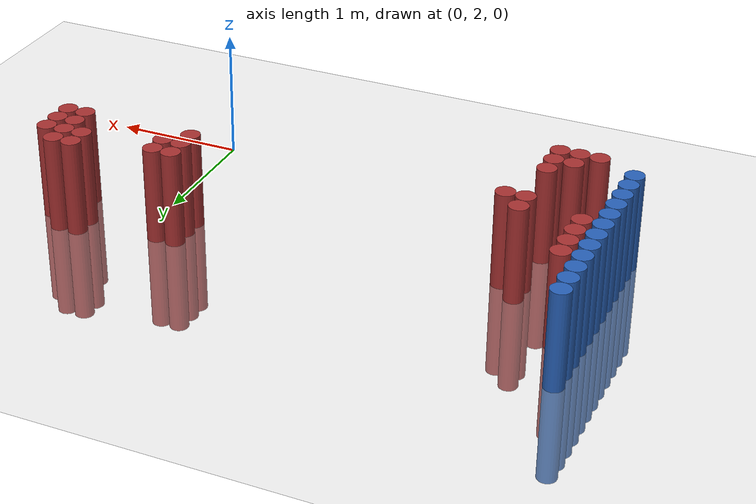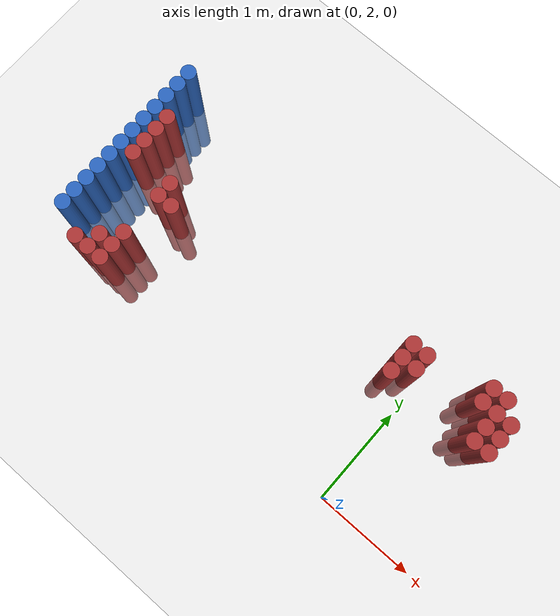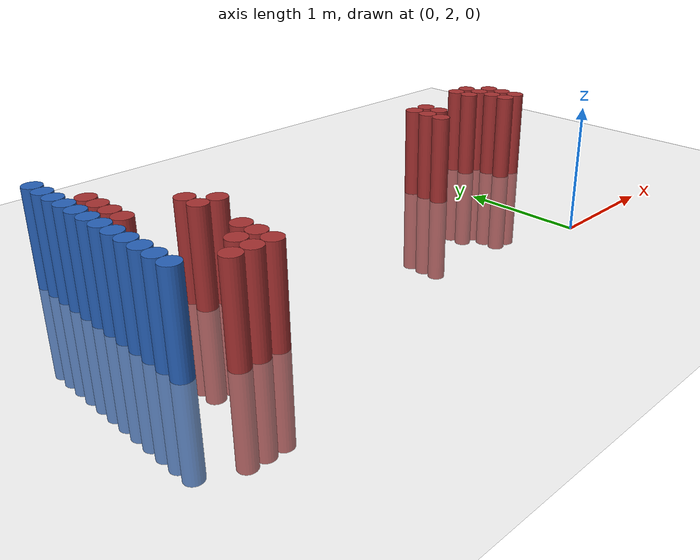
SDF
<sdf version="1.6">
 <world name="default">
  <model name="ground_plane">
   <static>1</static>
   <link name="link">
    <collision name="collision">
     <geometry><plane><normal>0 0 1</normal><size>100 100</size></plane></geometry>
     <surface><friction><ode><mu>100</mu><mu2>50</mu2></ode></friction></surface>
    </collision>
    <visual name="visual">
     <cast_shadows>0</cast_shadows>
     <geometry><plane><normal>0 0 1</normal><size>100 100</size></plane></geometry>
     <material>
      <script><uri>file://media/materials/scripts/gazebo.material</uri><name>Gazebo/Grey</name></script>
     </material>
    </visual>
   </link>
  </model>
  <model name="unit_cylinder_147">
   <static>1</static>
   <pose>-3.425000 2.425000 0.000000 0.000000 0.000000 0.000000</pose>
   <link name="link">
    <inertial>
     <mass>1</mass>
     <inertia><ixx>0.145833</ixx><ixy>0</ixy><ixz>0</ixz><iyy>0.145833</iyy><iyz>0</iyz><izz>0.125</izz></inertia>
    </inertial>
    <collision name="collision">
     <geometry><cylinder><radius>0.075000</radius><length>1.5</length></cylinder></geometry>
    </collision>
    <visual name="visual">
     <geometry><cylinder><radius>0.075000</radius><length>1.5</length></cylinder></geometry>
     <material>
      <ambient>0.152000 0.379000 0.720000 1</ambient>
      <diffuse>0.152000 0.379000 0.720000 1</diffuse>
     </material>
     <material>
      <script><name>Gazebo/Grey</name><uri>file://media/materials/scripts/gazebo.material</uri></script>
     </material>
    </visual>
   </link>
  </model>
  <model name="unit_cylinder_149">
   <static>1</static>
   <pose>-3.425000 2.575000 0.000000 0.000000 0.000000 0.000000</pose>
   <link name="link">
    <inertial>
     <mass>1</mass>
     <inertia><ixx>0.145833</ixx><ixy>0</ixy><ixz>0</ixz><iyy>0.145833</iyy><iyz>0</iyz><izz>0.125</izz></inertia>
    </inertial>
    <collision name="collision">
     <geometry><cylinder><radius>0.075000</radius><length>1.5</length></cylinder></geometry>
    </collision>
    <visual name="visual">
     <geometry><cylinder><radius>0.075000</radius><length>1.5</length></cylinder></geometry>
     <material>
      <ambient>0.152000 0.379000 0.720000 1</ambient>
      <diffuse>0.152000 0.379000 0.720000 1</diffuse>
     </material>
     <material>
      <script><name>Gazebo/Grey</name><uri>file://media/materials/scripts/gazebo.material</uri></script>
     </material>
    </visual>
   </link>
  </model>
  <model name="unit_cylinder_151">
   <static>1</static>
   <pose>-3.425000 2.725000 0.000000 0.000000 0.000000 0.000000</pose>
   <link name="link">
    <inertial>
     <mass>1</mass>
     <inertia><ixx>0.145833</ixx><ixy>0</ixy><ixz>0</ixz><iyy>0.145833</iyy><iyz>0</iyz><izz>0.125</izz></inertia>
    </inertial>
    <collision name="collision">
     <geometry><cylinder><radius>0.075000</radius><length>1.5</length></cylinder></geometry>
    </collision>
    <visual name="visual">
     <geometry><cylinder><radius>0.075000</radius><length>1.5</length></cylinder></geometry>
     <material>
      <ambient>0.152000 0.379000 0.720000 1</ambient>
      <diffuse>0.152000 0.379000 0.720000 1</diffuse>
     </material>
     <material>
      <script><name>Gazebo/Grey</name><uri>file://media/materials/scripts/gazebo.material</uri></script>
     </material>
    </visual>
   </link>
  </model>
  <model name="unit_cylinder_153">
   <static>1</static>
   <pose>-3.425000 2.875000 0.000000 0.000000 0.000000 0.000000</pose>
   <link name="link">
    <inertial>
     <mass>1</mass>
     <inertia><ixx>0.145833</ixx><ixy>0</ixy><ixz>0</ixz><iyy>0.145833</iyy><iyz>0</iyz><izz>0.125</izz></inertia>
    </inertial>
    <collision name="collision">
     <geometry><cylinder><radius>0.075000</radius><length>1.5</length></cylinder></geometry>
    </collision>
    <visual name="visual">
     <geometry><cylinder><radius>0.075000</radius><length>1.5</length></cylinder></geometry>
     <material>
      <ambient>0.152000 0.379000 0.720000 1</ambient>
      <diffuse>0.152000 0.379000 0.720000 1</diffuse>
     </material>
     <material>
      <script><name>Gazebo/Grey</name><uri>file://media/materials/scripts/gazebo.material</uri></script>
     </material>
    </visual>
   </link>
  </model>
  <model name="unit_cylinder_155">
   <static>1</static>
   <pose>-3.425000 3.025000 0.000000 0.000000 0.000000 0.000000</pose>
   <link name="link">
    <inertial>
     <mass>1</mass>
     <inertia><ixx>0.145833</ixx><ixy>0</ixy><ixz>0</ixz><iyy>0.145833</iyy><iyz>0</iyz><izz>0.125</izz></inertia>
    </inertial>
    <collision name="collision">
     <geometry><cylinder><radius>0.075000</radius><length>1.5</length></cylinder></geometry>
    </collision>
    <visual name="visual">
     <geometry><cylinder><radius>0.075000</radius><length>1.5</length></cylinder></geometry>
     <material>
      <ambient>0.152000 0.379000 0.720000 1</ambient>
      <diffuse>0.152000 0.379000 0.720000 1</diffuse>
     </material>
     <material>
      <script><name>Gazebo/Grey</name><uri>file://media/materials/scripts/gazebo.material</uri></script>
     </material>
    </visual>
   </link>
  </model>
  <model name="unit_cylinder_157">
   <static>1</static>
   <pose>-3.425000 3.175000 0.000000 0.000000 0.000000 0.000000</pose>
   <link name="link">
    <inertial>
     <mass>1</mass>
     <inertia><ixx>0.145833</ixx><ixy>0</ixy><ixz>0</ixz><iyy>0.145833</iyy><iyz>0</iyz><izz>0.125</izz></inertia>
    </inertial>
    <collision name="collision">
     <geometry><cylinder><radius>0.075000</radius><length>1.5</length></cylinder></geometry>
    </collision>
    <visual name="visual">
     <geometry><cylinder><radius>0.075000</radius><length>1.5</length></cylinder></geometry>
     <material>
      <ambient>0.152000 0.379000 0.720000 1</ambient>
      <diffuse>0.152000 0.379000 0.720000 1</diffuse>
     </material>
     <material>
      <script><name>Gazebo/Grey</name><uri>file://media/materials/scripts/gazebo.material</uri></script>
     </material>
    </visual>
   </link>
  </model>
  <model name="unit_cylinder_159">
   <static>1</static>
   <pose>-3.425000 3.325000 0.000000 0.000000 0.000000 0.000000</pose>
   <link name="link">
    <inertial>
     <mass>1</mass>
     <inertia><ixx>0.145833</ixx><ixy>0</ixy><ixz>0</ixz><iyy>0.145833</iyy><iyz>0</iyz><izz>0.125</izz></inertia>
    </inertial>
    <collision name="collision">
     <geometry><cylinder><radius>0.075000</radius><length>1.5</length></cylinder></geometry>
    </collision>
    <visual name="visual">
     <geometry><cylinder><radius>0.075000</radius><length>1.5</length></cylinder></geometry>
     <material>
      <ambient>0.152000 0.379000 0.720000 1</ambient>
      <diffuse>0.152000 0.379000 0.720000 1</diffuse>
     </material>
     <material>
      <script><name>Gazebo/Grey</name><uri>file://media/materials/scripts/gazebo.material</uri></script>
     </material>
    </visual>
   </link>
  </model>
  <model name="unit_cylinder_161">
   <static>1</static>
   <pose>-3.425000 3.475000 0.000000 0.000000 0.000000 0.000000</pose>
   <link name="link">
    <inertial>
     <mass>1</mass>
     <inertia><ixx>0.145833</ixx><ixy>0</ixy><ixz>0</ixz><iyy>0.145833</iyy><iyz>0</iyz><izz>0.125</izz></inertia>
    </inertial>
    <collision name="collision">
     <geometry><cylinder><radius>0.075000</radius><length>1.5</length></cylinder></geometry>
    </collision>
    <visual name="visual">
     <geometry><cylinder><radius>0.075000</radius><length>1.5</length></cylinder></geometry>
     <material>
      <ambient>0.152000 0.379000 0.720000 1</ambient>
      <diffuse>0.152000 0.379000 0.720000 1</diffuse>
     </material>
     <material>
      <script><name>Gazebo/Grey</name><uri>file://media/materials/scripts/gazebo.material</uri></script>
     </material>
    </visual>
   </link>
  </model>
  <model name="unit_cylinder_163">
   <static>1</static>
   <pose>-3.425000 3.625000 0.000000 0.000000 0.000000 0.000000</pose>
   <link name="link">
    <inertial>
     <mass>1</mass>
     <inertia><ixx>0.145833</ixx><ixy>0</ixy><ixz>0</ixz><iyy>0.145833</iyy><iyz>0</iyz><izz>0.125</izz></inertia>
    </inertial>
    <collision name="collision">
     <geometry><cylinder><radius>0.075000</radius><length>1.5</length></cylinder></geometry>
    </collision>
    <visual name="visual">
     <geometry><cylinder><radius>0.075000</radius><length>1.5</length></cylinder></geometry>
     <material>
      <ambient>0.152000 0.379000 0.720000 1</ambient>
      <diffuse>0.152000 0.379000 0.720000 1</diffuse>
     </material>
     <material>
      <script><name>Gazebo/Grey</name><uri>file://media/materials/scripts/gazebo.material</uri></script>
     </material>
    </visual>
   </link>
  </model>
  <model name="unit_cylinder_165">
   <static>1</static>
   <pose>-3.425000 3.775000 0.000000 0.000000 0.000000 0.000000</pose>
   <link name="link">
    <inertial>
     <mass>1</mass>
     <inertia><ixx>0.145833</ixx><ixy>0</ixy><ixz>0</ixz><iyy>0.145833</iyy><iyz>0</iyz><izz>0.125</izz></inertia>
    </inertial>
    <collision name="collision">
     <geometry><cylinder><radius>0.075000</radius><length>1.5</length></cylinder></geometry>
    </collision>
    <visual name="visual">
     <geometry><cylinder><radius>0.075000</radius><length>1.5</length></cylinder></geometry>
     <material>
      <ambient>0.152000 0.379000 0.720000 1</ambient>
      <diffuse>0.152000 0.379000 0.720000 1</diffuse>
     </material>
     <material>
      <script><name>Gazebo/Grey</name><uri>file://media/materials/scripts/gazebo.material</uri></script>
     </material>
    </visual>
   </link>
  </model>
  <model name="unit_cylinder_167">
   <static>1</static>
   <pose>-3.425000 3.925000 0.000000 0.000000 0.000000 0.000000</pose>
   <link name="link">
    <inertial>
     <mass>1</mass>
     <inertia><ixx>0.145833</ixx><ixy>0</ixy><ixz>0</ixz><iyy>0.145833</iyy><iyz>0</iyz><izz>0.125</izz></inertia>
    </inertial>
    <collision name="collision">
     <geometry><cylinder><radius>0.075000</radius><length>1.5</length></cylinder></geometry>
    </collision>
    <visual name="visual">
     <geometry><cylinder><radius>0.075000</radius><length>1.5</length></cylinder></geometry>
     <material>
      <ambient>0.152000 0.379000 0.720000 1</ambient>
      <diffuse>0.152000 0.379000 0.720000 1</diffuse>
     </material>
     <material>
      <script><name>Gazebo/Grey</name><uri>file://media/materials/scripts/gazebo.material</uri></script>
     </material>
    </visual>
   </link>
  </model>
  <model name="unit_cylinder_169">
   <static>1</static>
   <pose>-3.425000 4.075000 0.000000 0.000000 0.000000 0.000000</pose>
   <link name="link">
    <inertial>
     <mass>1</mass>
     <inertia><ixx>0.145833</ixx><ixy>0</ixy><ixz>0</ixz><iyy>0.145833</iyy><iyz>0</iyz><izz>0.125</izz></inertia>
    </inertial>
    <collision name="collision">
     <geometry><cylinder><radius>0.075000</radius><length>1.5</length></cylinder></geometry>
    </collision>
    <visual name="visual">
     <geometry><cylinder><radius>0.075000</radius><length>1.5</length></cylinder></geometry>
     <material>
      <ambient>0.152000 0.379000 0.720000 1</ambient>
      <diffuse>0.152000 0.379000 0.720000 1</diffuse>
     </material>
     <material>
      <script><name>Gazebo/Grey</name><uri>file://media/materials/scripts/gazebo.material</uri></script>
     </material>
    </visual>
   </link>
  </model>
  <model name="unit_cylinder_237">
   <static>1</static>
   <pose>-3.425000 2.425000 0.000000 0.000000 0.000000 0.000000</pose>
   <link name="link">
    <inertial>
     <mass>1</mass>
     <inertia><ixx>0.145833</ixx><ixy>0</ixy><ixz>0</ixz><iyy>0.145833</iyy><iyz>0</iyz><izz>0.125</izz></inertia>
    </inertial>
    <collision name="collision">
     <geometry><cylinder><radius>0.075000</radius><length>1.5</length></cylinder></geometry>
    </collision>
    <visual name="visual">
     <geometry><cylinder><radius>0.075000</radius><length>1.5</length></cylinder></geometry>
     <material>
      <ambient>0.152000 0.379000 0.720000 1</ambient>
      <diffuse>0.152000 0.379000 0.720000 1</diffuse>
     </material>
     <material>
      <script><name>Gazebo/Grey</name><uri>file://media/materials/scripts/gazebo.material</uri></script>
     </material>
    </visual>
   </link>
  </model>
  <model name="unit_cylinder_238">
   <static>1</static>
   <pose>-3.425000 2.575000 0.000000 0.000000 0.000000 0.000000</pose>
   <link name="link">
    <inertial>
     <mass>1</mass>
     <inertia><ixx>0.145833</ixx><ixy>0</ixy><ixz>0</ixz><iyy>0.145833</iyy><iyz>0</iyz><izz>0.125</izz></inertia>
    </inertial>
    <collision name="collision">
     <geometry><cylinder><radius>0.075000</radius><length>1.5</length></cylinder></geometry>
    </collision>
    <visual name="visual">
     <geometry><cylinder><radius>0.075000</radius><length>1.5</length></cylinder></geometry>
     <material>
      <ambient>0.152000 0.379000 0.720000 1</ambient>
      <diffuse>0.152000 0.379000 0.720000 1</diffuse>
     </material>
     <material>
      <script><name>Gazebo/Grey</name><uri>file://media/materials/scripts/gazebo.material</uri></script>
     </material>
    </visual>
   </link>
  </model>
  <model name="unit_cylinder_239">
   <static>1</static>
   <pose>-3.425000 2.725000 0.000000 0.000000 0.000000 0.000000</pose>
   <link name="link">
    <inertial>
     <mass>1</mass>
     <inertia><ixx>0.145833</ixx><ixy>0</ixy><ixz>0</ixz><iyy>0.145833</iyy><iyz>0</iyz><izz>0.125</izz></inertia>
    </inertial>
    <collision name="collision">
     <geometry><cylinder><radius>0.075000</radius><length>1.5</length></cylinder></geometry>
    </collision>
    <visual name="visual">
     <geometry><cylinder><radius>0.075000</radius><length>1.5</length></cylinder></geometry>
     <material>
      <ambient>0.152000 0.379000 0.720000 1</ambient>
      <diffuse>0.152000 0.379000 0.720000 1</diffuse>
     </material>
     <material>
      <script><name>Gazebo/Grey</name><uri>file://media/materials/scripts/gazebo.material</uri></script>
     </material>
    </visual>
   </link>
  </model>
  <model name="unit_cylinder_240">
   <static>1</static>
   <pose>-3.425000 2.875000 0.000000 0.000000 0.000000 0.000000</pose>
   <link name="link">
    <inertial>
     <mass>1</mass>
     <inertia><ixx>0.145833</ixx><ixy>0</ixy><ixz>0</ixz><iyy>0.145833</iyy><iyz>0</iyz><izz>0.125</izz></inertia>
    </inertial>
    <collision name="collision">
     <geometry><cylinder><radius>0.075000</radius><length>1.5</length></cylinder></geometry>
    </collision>
    <visual name="visual">
     <geometry><cylinder><radius>0.075000</radius><length>1.5</length></cylinder></geometry>
     <material>
      <ambient>0.152000 0.379000 0.720000 1</ambient>
      <diffuse>0.152000 0.379000 0.720000 1</diffuse>
     </material>
     <material>
      <script><name>Gazebo/Grey</name><uri>file://media/materials/scripts/gazebo.material</uri></script>
     </material>
    </visual>
   </link>
  </model>
  <model name="unit_cylinder_241">
   <static>1</static>
   <pose>-3.425000 3.025000 0.000000 0.000000 0.000000 0.000000</pose>
   <link name="link">
    <inertial>
     <mass>1</mass>
     <inertia><ixx>0.145833</ixx><ixy>0</ixy><ixz>0</ixz><iyy>0.145833</iyy><iyz>0</iyz><izz>0.125</izz></inertia>
    </inertial>
    <collision name="collision">
     <geometry><cylinder><radius>0.075000</radius><length>1.5</length></cylinder></geometry>
    </collision>
    <visual name="visual">
     <geometry><cylinder><radius>0.075000</radius><length>1.5</length></cylinder></geometry>
     <material>
      <ambient>0.152000 0.379000 0.720000 1</ambient>
      <diffuse>0.152000 0.379000 0.720000 1</diffuse>
     </material>
     <material>
      <script><name>Gazebo/Grey</name><uri>file://media/materials/scripts/gazebo.material</uri></script>
     </material>
    </visual>
   </link>
  </model>
  <model name="unit_cylinder_242">
   <static>1</static>
   <pose>-3.425000 3.175000 0.000000 0.000000 0.000000 0.000000</pose>
   <link name="link">
    <inertial>
     <mass>1</mass>
     <inertia><ixx>0.145833</ixx><ixy>0</ixy><ixz>0</ixz><iyy>0.145833</iyy><iyz>0</iyz><izz>0.125</izz></inertia>
    </inertial>
    <collision name="collision">
     <geometry><cylinder><radius>0.075000</radius><length>1.5</length></cylinder></geometry>
    </collision>
    <visual name="visual">
     <geometry><cylinder><radius>0.075000</radius><length>1.5</length></cylinder></geometry>
     <material>
      <ambient>0.152000 0.379000 0.720000 1</ambient>
      <diffuse>0.152000 0.379000 0.720000 1</diffuse>
     </material>
     <material>
      <script><name>Gazebo/Grey</name><uri>file://media/materials/scripts/gazebo.material</uri></script>
     </material>
    </visual>
   </link>
  </model>
  <model name="unit_cylinder_243">
   <static>1</static>
   <pose>-3.425000 3.325000 0.000000 0.000000 0.000000 0.000000</pose>
   <link name="link">
    <inertial>
     <mass>1</mass>
     <inertia><ixx>0.145833</ixx><ixy>0</ixy><ixz>0</ixz><iyy>0.145833</iyy><iyz>0</iyz><izz>0.125</izz></inertia>
    </inertial>
    <collision name="collision">
     <geometry><cylinder><radius>0.075000</radius><length>1.5</length></cylinder></geometry>
    </collision>
    <visual name="visual">
     <geometry><cylinder><radius>0.075000</radius><length>1.5</length></cylinder></geometry>
     <material>
      <ambient>0.152000 0.379000 0.720000 1</ambient>
      <diffuse>0.152000 0.379000 0.720000 1</diffuse>
     </material>
     <material>
      <script><name>Gazebo/Grey</name><uri>file://media/materials/scripts/gazebo.material</uri></script>
     </material>
    </visual>
   </link>
  </model>
  <model name="unit_cylinder_244">
   <static>1</static>
   <pose>-3.425000 3.475000 0.000000 0.000000 0.000000 0.000000</pose>
   <link name="link">
    <inertial>
     <mass>1</mass>
     <inertia><ixx>0.145833</ixx><ixy>0</ixy><ixz>0</ixz><iyy>0.145833</iyy><iyz>0</iyz><izz>0.125</izz></inertia>
    </inertial>
    <collision name="collision">
     <geometry><cylinder><radius>0.075000</radius><length>1.5</length></cylinder></geometry>
    </collision>
    <visual name="visual">
     <geometry><cylinder><radius>0.075000</radius><length>1.5</length></cylinder></geometry>
     <material>
      <ambient>0.152000 0.379000 0.720000 1</ambient>
      <diffuse>0.152000 0.379000 0.720000 1</diffuse>
     </material>
     <material>
      <script><name>Gazebo/Grey</name><uri>file://media/materials/scripts/gazebo.material</uri></script>
     </material>
    </visual>
   </link>
  </model>
  <model name="unit_cylinder_245">
   <static>1</static>
   <pose>-3.425000 3.625000 0.000000 0.000000 0.000000 0.000000</pose>
   <link name="link">
    <inertial>
     <mass>1</mass>
     <inertia><ixx>0.145833</ixx><ixy>0</ixy><ixz>0</ixz><iyy>0.145833</iyy><iyz>0</iyz><izz>0.125</izz></inertia>
    </inertial>
    <collision name="collision">
     <geometry><cylinder><radius>0.075000</radius><length>1.5</length></cylinder></geometry>
    </collision>
    <visual name="visual">
     <geometry><cylinder><radius>0.075000</radius><length>1.5</length></cylinder></geometry>
     <material>
      <ambient>0.152000 0.379000 0.720000 1</ambient>
      <diffuse>0.152000 0.379000 0.720000 1</diffuse>
     </material>
     <material>
      <script><name>Gazebo/Grey</name><uri>file://media/materials/scripts/gazebo.material</uri></script>
     </material>
    </visual>
   </link>
  </model>
  <model name="unit_cylinder_246">
   <static>1</static>
   <pose>-3.425000 3.775000 0.000000 0.000000 0.000000 0.000000</pose>
   <link name="link">
    <inertial>
     <mass>1</mass>
     <inertia><ixx>0.145833</ixx><ixy>0</ixy><ixz>0</ixz><iyy>0.145833</iyy><iyz>0</iyz><izz>0.125</izz></inertia>
    </inertial>
    <collision name="collision">
     <geometry><cylinder><radius>0.075000</radius><length>1.5</length></cylinder></geometry>
    </collision>
    <visual name="visual">
     <geometry><cylinder><radius>0.075000</radius><length>1.5</length></cylinder></geometry>
     <material>
      <ambient>0.152000 0.379000 0.720000 1</ambient>
      <diffuse>0.152000 0.379000 0.720000 1</diffuse>
     </material>
     <material>
      <script><name>Gazebo/Grey</name><uri>file://media/materials/scripts/gazebo.material</uri></script>
     </material>
    </visual>
   </link>
  </model>
  <model name="unit_cylinder_247">
   <static>1</static>
   <pose>-3.425000 3.925000 0.000000 0.000000 0.000000 0.000000</pose>
   <link name="link">
    <inertial>
     <mass>1</mass>
     <inertia><ixx>0.145833</ixx><ixy>0</ixy><ixz>0</ixz><iyy>0.145833</iyy><iyz>0</iyz><izz>0.125</izz></inertia>
    </inertial>
    <collision name="collision">
     <geometry><cylinder><radius>0.075000</radius><length>1.5</length></cylinder></geometry>
    </collision>
    <visual name="visual">
     <geometry><cylinder><radius>0.075000</radius><length>1.5</length></cylinder></geometry>
     <material>
      <ambient>0.152000 0.379000 0.720000 1</ambient>
      <diffuse>0.152000 0.379000 0.720000 1</diffuse>
     </material>
     <material>
      <script><name>Gazebo/Grey</name><uri>file://media/materials/scripts/gazebo.material</uri></script>
     </material>
    </visual>
   </link>
  </model>
  <model name="unit_cylinder_277">
   <static>1</static>
   <pose>-3.275000 3.175000 0.000000 0.000000 0.000000 0.000000</pose>
   <link name="link">
    <inertial>
     <mass>1</mass>
     <inertia><ixx>0.145833</ixx><ixy>0</ixy><ixz>0</ixz><iyy>0.145833</iyy><iyz>0</iyz><izz>0.125</izz></inertia>
    </inertial>
    <collision name="collision">
     <geometry><cylinder><radius>0.075000</radius><length>1.5</length></cylinder></geometry>
    </collision>
    <visual name="visual">
     <geometry><cylinder><radius>0.075000</radius><length>1.5</length></cylinder></geometry>
     <material>
      <ambient>0.648000 0.192000 0.192000 1</ambient>
      <diffuse>0.648000 0.192000 0.192000 1</diffuse>
     </material>
     <material>
      <script><name>Gazebo/Grey</name><uri>file://media/materials/scripts/gazebo.material</uri></script>
     </material>
    </visual>
   </link>
  </model>
  <model name="unit_cylinder_278">
   <static>1</static>
   <pose>-3.275000 3.325000 0.000000 0.000000 0.000000 0.000000</pose>
   <link name="link">
    <inertial>
     <mass>1</mass>
     <inertia><ixx>0.145833</ixx><ixy>0</ixy><ixz>0</ixz><iyy>0.145833</iyy><iyz>0</iyz><izz>0.125</izz></inertia>
    </inertial>
    <collision name="collision">
     <geometry><cylinder><radius>0.075000</radius><length>1.5</length></cylinder></geometry>
    </collision>
    <visual name="visual">
     <geometry><cylinder><radius>0.075000</radius><length>1.5</length></cylinder></geometry>
     <material>
      <ambient>0.648000 0.192000 0.192000 1</ambient>
      <diffuse>0.648000 0.192000 0.192000 1</diffuse>
     </material>
     <material>
      <script><name>Gazebo/Grey</name><uri>file://media/materials/scripts/gazebo.material</uri></script>
     </material>
    </visual>
   </link>
  </model>
  <model name="unit_cylinder_279">
   <static>1</static>
   <pose>-3.275000 3.475000 0.000000 0.000000 0.000000 0.000000</pose>
   <link name="link">
    <inertial>
     <mass>1</mass>
     <inertia><ixx>0.145833</ixx><ixy>0</ixy><ixz>0</ixz><iyy>0.145833</iyy><iyz>0</iyz><izz>0.125</izz></inertia>
    </inertial>
    <collision name="collision">
     <geometry><cylinder><radius>0.075000</radius><length>1.5</length></cylinder></geometry>
    </collision>
    <visual name="visual">
     <geometry><cylinder><radius>0.075000</radius><length>1.5</length></cylinder></geometry>
     <material>
      <ambient>0.648000 0.192000 0.192000 1</ambient>
      <diffuse>0.648000 0.192000 0.192000 1</diffuse>
     </material>
     <material>
      <script><name>Gazebo/Grey</name><uri>file://media/materials/scripts/gazebo.material</uri></script>
     </material>
    </visual>
   </link>
  </model>
  <model name="unit_cylinder_280">
   <static>1</static>
   <pose>-3.275000 3.625000 0.000000 0.000000 0.000000 0.000000</pose>
   <link name="link">
    <inertial>
     <mass>1</mass>
     <inertia><ixx>0.145833</ixx><ixy>0</ixy><ixz>0</ixz><iyy>0.145833</iyy><iyz>0</iyz><izz>0.125</izz></inertia>
    </inertial>
    <collision name="collision">
     <geometry><cylinder><radius>0.075000</radius><length>1.5</length></cylinder></geometry>
    </collision>
    <visual name="visual">
     <geometry><cylinder><radius>0.075000</radius><length>1.5</length></cylinder></geometry>
     <material>
      <ambient>0.648000 0.192000 0.192000 1</ambient>
      <diffuse>0.648000 0.192000 0.192000 1</diffuse>
     </material>
     <material>
      <script><name>Gazebo/Grey</name><uri>file://media/materials/scripts/gazebo.material</uri></script>
     </material>
    </visual>
   </link>
  </model>
  <model name="unit_cylinder_294">
   <static>1</static>
   <pose>-3.125000 2.275000 0.000000 0.000000 0.000000 0.000000</pose>
   <link name="link">
    <inertial>
     <mass>1</mass>
     <inertia><ixx>0.145833</ixx><ixy>0</ixy><ixz>0</ixz><iyy>0.145833</iyy><iyz>0</iyz><izz>0.125</izz></inertia>
    </inertial>
    <collision name="collision">
     <geometry><cylinder><radius>0.075000</radius><length>1.5</length></cylinder></geometry>
    </collision>
    <visual name="visual">
     <geometry><cylinder><radius>0.075000</radius><length>1.5</length></cylinder></geometry>
     <material>
      <ambient>0.648000 0.192000 0.192000 1</ambient>
      <diffuse>0.648000 0.192000 0.192000 1</diffuse>
     </material>
     <material>
      <script><name>Gazebo/Grey</name><uri>file://media/materials/scripts/gazebo.material</uri></script>
     </material>
    </visual>
   </link>
  </model>
  <model name="unit_cylinder_299">
   <static>1</static>
   <pose>-2.975000 2.275000 0.000000 0.000000 0.000000 0.000000</pose>
   <link name="link">
    <inertial>
     <mass>1</mass>
     <inertia><ixx>0.145833</ixx><ixy>0</ixy><ixz>0</ixz><iyy>0.145833</iyy><iyz>0</iyz><izz>0.125</izz></inertia>
    </inertial>
    <collision name="collision">
     <geometry><cylinder><radius>0.075000</radius><length>1.5</length></cylinder></geometry>
    </collision>
    <visual name="visual">
     <geometry><cylinder><radius>0.075000</radius><length>1.5</length></cylinder></geometry>
     <material>
      <ambient>0.648000 0.192000 0.192000 1</ambient>
      <diffuse>0.648000 0.192000 0.192000 1</diffuse>
     </material>
     <material>
      <script><name>Gazebo/Grey</name><uri>file://media/materials/scripts/gazebo.material</uri></script>
     </material>
    </visual>
   </link>
  </model>
  <model name="unit_cylinder_300">
   <static>1</static>
   <pose>-2.975000 2.425000 0.000000 0.000000 0.000000 0.000000</pose>
   <link name="link">
    <inertial>
     <mass>1</mass>
     <inertia><ixx>0.145833</ixx><ixy>0</ixy><ixz>0</ixz><iyy>0.145833</iyy><iyz>0</iyz><izz>0.125</izz></inertia>
    </inertial>
    <collision name="collision">
     <geometry><cylinder><radius>0.075000</radius><length>1.5</length></cylinder></geometry>
    </collision>
    <visual name="visual">
     <geometry><cylinder><radius>0.075000</radius><length>1.5</length></cylinder></geometry>
     <material>
      <ambient>0.648000 0.192000 0.192000 1</ambient>
      <diffuse>0.648000 0.192000 0.192000 1</diffuse>
     </material>
     <material>
      <script><name>Gazebo/Grey</name><uri>file://media/materials/scripts/gazebo.material</uri></script>
     </material>
    </visual>
   </link>
  </model>
  <model name="unit_cylinder_306">
   <static>1</static>
   <pose>-2.825000 2.275000 0.000000 0.000000 0.000000 0.000000</pose>
   <link name="link">
    <inertial>
     <mass>1</mass>
     <inertia><ixx>0.145833</ixx><ixy>0</ixy><ixz>0</ixz><iyy>0.145833</iyy><iyz>0</iyz><izz>0.125</izz></inertia>
    </inertial>
    <collision name="collision">
     <geometry><cylinder><radius>0.075000</radius><length>1.5</length></cylinder></geometry>
    </collision>
    <visual name="visual">
     <geometry><cylinder><radius>0.075000</radius><length>1.5</length></cylinder></geometry>
     <material>
      <ambient>0.648000 0.192000 0.192000 1</ambient>
      <diffuse>0.648000 0.192000 0.192000 1</diffuse>
     </material>
     <material>
      <script><name>Gazebo/Grey</name><uri>file://media/materials/scripts/gazebo.material</uri></script>
     </material>
    </visual>
   </link>
  </model>
  <model name="unit_cylinder_307">
   <static>1</static>
   <pose>-2.825000 2.425000 0.000000 0.000000 0.000000 0.000000</pose>
   <link name="link">
    <inertial>
     <mass>1</mass>
     <inertia><ixx>0.145833</ixx><ixy>0</ixy><ixz>0</ixz><iyy>0.145833</iyy><iyz>0</iyz><izz>0.125</izz></inertia>
    </inertial>
    <collision name="collision">
     <geometry><cylinder><radius>0.075000</radius><length>1.5</length></cylinder></geometry>
    </collision>
    <visual name="visual">
     <geometry><cylinder><radius>0.075000</radius><length>1.5</length></cylinder></geometry>
     <material>
      <ambient>0.648000 0.192000 0.192000 1</ambient>
      <diffuse>0.648000 0.192000 0.192000 1</diffuse>
     </material>
     <material>
      <script><name>Gazebo/Grey</name><uri>file://media/materials/scripts/gazebo.material</uri></script>
     </material>
    </visual>
   </link>
  </model>
  <model name="unit_cylinder_308">
   <static>1</static>
   <pose>-2.825000 2.575000 0.000000 0.000000 0.000000 0.000000</pose>
   <link name="link">
    <inertial>
     <mass>1</mass>
     <inertia><ixx>0.145833</ixx><ixy>0</ixy><ixz>0</ixz><iyy>0.145833</iyy><iyz>0</iyz><izz>0.125</izz></inertia>
    </inertial>
    <collision name="collision">
     <geometry><cylinder><radius>0.075000</radius><length>1.5</length></cylinder></geometry>
    </collision>
    <visual name="visual">
     <geometry><cylinder><radius>0.075000</radius><length>1.5</length></cylinder></geometry>
     <material>
      <ambient>0.648000 0.192000 0.192000 1</ambient>
      <diffuse>0.648000 0.192000 0.192000 1</diffuse>
     </material>
     <material>
      <script><name>Gazebo/Grey</name><uri>file://media/materials/scripts/gazebo.material</uri></script>
     </material>
    </visual>
   </link>
  </model>
  <model name="unit_cylinder_309">
   <static>1</static>
   <pose>-2.825000 3.025000 0.000000 0.000000 0.000000 0.000000</pose>
   <link name="link">
    <inertial>
     <mass>1</mass>
     <inertia><ixx>0.145833</ixx><ixy>0</ixy><ixz>0</ixz><iyy>0.145833</iyy><iyz>0</iyz><izz>0.125</izz></inertia>
    </inertial>
    <collision name="collision">
     <geometry><cylinder><radius>0.075000</radius><length>1.5</length></cylinder></geometry>
    </collision>
    <visual name="visual">
     <geometry><cylinder><radius>0.075000</radius><length>1.5</length></cylinder></geometry>
     <material>
      <ambient>0.648000 0.192000 0.192000 1</ambient>
      <diffuse>0.648000 0.192000 0.192000 1</diffuse>
     </material>
     <material>
      <script><name>Gazebo/Grey</name><uri>file://media/materials/scripts/gazebo.material</uri></script>
     </material>
    </visual>
   </link>
  </model>
  <model name="unit_cylinder_310">
   <static>1</static>
   <pose>-2.825000 3.175000 0.000000 0.000000 0.000000 0.000000</pose>
   <link name="link">
    <inertial>
     <mass>1</mass>
     <inertia><ixx>0.145833</ixx><ixy>0</ixy><ixz>0</ixz><iyy>0.145833</iyy><iyz>0</iyz><izz>0.125</izz></inertia>
    </inertial>
    <collision name="collision">
     <geometry><cylinder><radius>0.075000</radius><length>1.5</length></cylinder></geometry>
    </collision>
    <visual name="visual">
     <geometry><cylinder><radius>0.075000</radius><length>1.5</length></cylinder></geometry>
     <material>
      <ambient>0.648000 0.192000 0.192000 1</ambient>
      <diffuse>0.648000 0.192000 0.192000 1</diffuse>
     </material>
     <material>
      <script><name>Gazebo/Grey</name><uri>file://media/materials/scripts/gazebo.material</uri></script>
     </material>
    </visual>
   </link>
  </model>
  <model name="unit_cylinder_315">
   <static>1</static>
   <pose>-2.675000 3.025000 0.000000 0.000000 0.000000 0.000000</pose>
   <link name="link">
    <inertial>
     <mass>1</mass>
     <inertia><ixx>0.145833</ixx><ixy>0</ixy><ixz>0</ixz><iyy>0.145833</iyy><iyz>0</iyz><izz>0.125</izz></inertia>
    </inertial>
    <collision name="collision">
     <geometry><cylinder><radius>0.075000</radius><length>1.5</length></cylinder></geometry>
    </collision>
    <visual name="visual">
     <geometry><cylinder><radius>0.075000</radius><length>1.5</length></cylinder></geometry>
     <material>
      <ambient>0.648000 0.192000 0.192000 1</ambient>
      <diffuse>0.648000 0.192000 0.192000 1</diffuse>
     </material>
     <material>
      <script><name>Gazebo/Grey</name><uri>file://media/materials/scripts/gazebo.material</uri></script>
     </material>
    </visual>
   </link>
  </model>
  <model name="unit_cylinder_342">
   <static>1</static>
   <pose>-0.275000 3.175000 0.000000 0.000000 0.000000 0.000000</pose>
   <link name="link">
    <inertial>
     <mass>1</mass>
     <inertia><ixx>0.145833</ixx><ixy>0</ixy><ixz>0</ixz><iyy>0.145833</iyy><iyz>0</iyz><izz>0.125</izz></inertia>
    </inertial>
    <collision name="collision">
     <geometry><cylinder><radius>0.075000</radius><length>1.5</length></cylinder></geometry>
    </collision>
    <visual name="visual">
     <geometry><cylinder><radius>0.075000</radius><length>1.5</length></cylinder></geometry>
     <material>
      <ambient>0.648000 0.192000 0.192000 1</ambient>
      <diffuse>0.648000 0.192000 0.192000 1</diffuse>
     </material>
     <material>
      <script><name>Gazebo/Grey</name><uri>file://media/materials/scripts/gazebo.material</uri></script>
     </material>
    </visual>
   </link>
  </model>
  <model name="unit_cylinder_343">
   <static>1</static>
   <pose>-0.275000 3.325000 0.000000 0.000000 0.000000 0.000000</pose>
   <link name="link">
    <inertial>
     <mass>1</mass>
     <inertia><ixx>0.145833</ixx><ixy>0</ixy><ixz>0</ixz><iyy>0.145833</iyy><iyz>0</iyz><izz>0.125</izz></inertia>
    </inertial>
    <collision name="collision">
     <geometry><cylinder><radius>0.075000</radius><length>1.5</length></cylinder></geometry>
    </collision>
    <visual name="visual">
     <geometry><cylinder><radius>0.075000</radius><length>1.5</length></cylinder></geometry>
     <material>
      <ambient>0.648000 0.192000 0.192000 1</ambient>
      <diffuse>0.648000 0.192000 0.192000 1</diffuse>
     </material>
     <material>
      <script><name>Gazebo/Grey</name><uri>file://media/materials/scripts/gazebo.material</uri></script>
     </material>
    </visual>
   </link>
  </model>
  <model name="unit_cylinder_344">
   <static>1</static>
   <pose>-0.275000 3.475000 0.000000 0.000000 0.000000 0.000000</pose>
   <link name="link">
    <inertial>
     <mass>1</mass>
     <inertia><ixx>0.145833</ixx><ixy>0</ixy><ixz>0</ixz><iyy>0.145833</iyy><iyz>0</iyz><izz>0.125</izz></inertia>
    </inertial>
    <collision name="collision">
     <geometry><cylinder><radius>0.075000</radius><length>1.5</length></cylinder></geometry>
    </collision>
    <visual name="visual">
     <geometry><cylinder><radius>0.075000</radius><length>1.5</length></cylinder></geometry>
     <material>
      <ambient>0.648000 0.192000 0.192000 1</ambient>
      <diffuse>0.648000 0.192000 0.192000 1</diffuse>
     </material>
     <material>
      <script><name>Gazebo/Grey</name><uri>file://media/materials/scripts/gazebo.material</uri></script>
     </material>
    </visual>
   </link>
  </model>
  <model name="unit_cylinder_350">
   <static>1</static>
   <pose>-0.125000 3.325000 0.000000 0.000000 0.000000 0.000000</pose>
   <link name="link">
    <inertial>
     <mass>1</mass>
     <inertia><ixx>0.145833</ixx><ixy>0</ixy><ixz>0</ixz><iyy>0.145833</iyy><iyz>0</iyz><izz>0.125</izz></inertia>
    </inertial>
    <collision name="collision">
     <geometry><cylinder><radius>0.075000</radius><length>1.5</length></cylinder></geometry>
    </collision>
    <visual name="visual">
     <geometry><cylinder><radius>0.075000</radius><length>1.5</length></cylinder></geometry>
     <material>
      <ambient>0.648000 0.192000 0.192000 1</ambient>
      <diffuse>0.648000 0.192000 0.192000 1</diffuse>
     </material>
     <material>
      <script><name>Gazebo/Grey</name><uri>file://media/materials/scripts/gazebo.material</uri></script>
     </material>
    </visual>
   </link>
  </model>
  <model name="unit_cylinder_351">
   <static>1</static>
   <pose>-0.125000 3.475000 0.000000 0.000000 0.000000 0.000000</pose>
   <link name="link">
    <inertial>
     <mass>1</mass>
     <inertia><ixx>0.145833</ixx><ixy>0</ixy><ixz>0</ixz><iyy>0.145833</iyy><iyz>0</iyz><izz>0.125</izz></inertia>
    </inertial>
    <collision name="collision">
     <geometry><cylinder><radius>0.075000</radius><length>1.5</length></cylinder></geometry>
    </collision>
    <visual name="visual">
     <geometry><cylinder><radius>0.075000</radius><length>1.5</length></cylinder></geometry>
     <material>
      <ambient>0.648000 0.192000 0.192000 1</ambient>
      <diffuse>0.648000 0.192000 0.192000 1</diffuse>
     </material>
     <material>
      <script><name>Gazebo/Grey</name><uri>file://media/materials/scripts/gazebo.material</uri></script>
     </material>
    </visual>
   </link>
  </model>
  <model name="unit_cylinder_366">
   <static>1</static>
   <pose>0.475000 3.475000 0.000000 0.000000 0.000000 0.000000</pose>
   <link name="link">
    <inertial>
     <mass>1</mass>
     <inertia><ixx>0.145833</ixx><ixy>0</ixy><ixz>0</ixz><iyy>0.145833</iyy><iyz>0</iyz><izz>0.125</izz></inertia>
    </inertial>
    <collision name="collision">
     <geometry><cylinder><radius>0.075000</radius><length>1.5</length></cylinder></geometry>
    </collision>
    <visual name="visual">
     <geometry><cylinder><radius>0.075000</radius><length>1.5</length></cylinder></geometry>
     <material>
      <ambient>0.648000 0.192000 0.192000 1</ambient>
      <diffuse>0.648000 0.192000 0.192000 1</diffuse>
     </material>
     <material>
      <script><name>Gazebo/Grey</name><uri>file://media/materials/scripts/gazebo.material</uri></script>
     </material>
    </visual>
   </link>
  </model>
  <model name="unit_cylinder_367">
   <static>1</static>
   <pose>0.475000 3.625000 0.000000 0.000000 0.000000 0.000000</pose>
   <link name="link">
    <inertial>
     <mass>1</mass>
     <inertia><ixx>0.145833</ixx><ixy>0</ixy><ixz>0</ixz><iyy>0.145833</iyy><iyz>0</iyz><izz>0.125</izz></inertia>
    </inertial>
    <collision name="collision">
     <geometry><cylinder><radius>0.075000</radius><length>1.5</length></cylinder></geometry>
    </collision>
    <visual name="visual">
     <geometry><cylinder><radius>0.075000</radius><length>1.5</length></cylinder></geometry>
     <material>
      <ambient>0.648000 0.192000 0.192000 1</ambient>
      <diffuse>0.648000 0.192000 0.192000 1</diffuse>
     </material>
     <material>
      <script><name>Gazebo/Grey</name><uri>file://media/materials/scripts/gazebo.material</uri></script>
     </material>
    </visual>
   </link>
  </model>
  <model name="unit_cylinder_373">
   <static>1</static>
   <pose>0.625000 3.175000 0.000000 0.000000 0.000000 0.000000</pose>
   <link name="link">
    <inertial>
     <mass>1</mass>
     <inertia><ixx>0.145833</ixx><ixy>0</ixy><ixz>0</ixz><iyy>0.145833</iyy><iyz>0</iyz><izz>0.125</izz></inertia>
    </inertial>
    <collision name="collision">
     <geometry><cylinder><radius>0.075000</radius><length>1.5</length></cylinder></geometry>
    </collision>
    <visual name="visual">
     <geometry><cylinder><radius>0.075000</radius><length>1.5</length></cylinder></geometry>
     <material>
      <ambient>0.648000 0.192000 0.192000 1</ambient>
      <diffuse>0.648000 0.192000 0.192000 1</diffuse>
     </material>
     <material>
      <script><name>Gazebo/Grey</name><uri>file://media/materials/scripts/gazebo.material</uri></script>
     </material>
    </visual>
   </link>
  </model>
  <model name="unit_cylinder_374">
   <static>1</static>
   <pose>0.625000 3.325000 0.000000 0.000000 0.000000 0.000000</pose>
   <link name="link">
    <inertial>
     <mass>1</mass>
     <inertia><ixx>0.145833</ixx><ixy>0</ixy><ixz>0</ixz><iyy>0.145833</iyy><iyz>0</iyz><izz>0.125</izz></inertia>
    </inertial>
    <collision name="collision">
     <geometry><cylinder><radius>0.075000</radius><length>1.5</length></cylinder></geometry>
    </collision>
    <visual name="visual">
     <geometry><cylinder><radius>0.075000</radius><length>1.5</length></cylinder></geometry>
     <material>
      <ambient>0.648000 0.192000 0.192000 1</ambient>
      <diffuse>0.648000 0.192000 0.192000 1</diffuse>
     </material>
     <material>
      <script><name>Gazebo/Grey</name><uri>file://media/materials/scripts/gazebo.material</uri></script>
     </material>
    </visual>
   </link>
  </model>
  <model name="unit_cylinder_375">
   <static>1</static>
   <pose>0.625000 3.475000 0.000000 0.000000 0.000000 0.000000</pose>
   <link name="link">
    <inertial>
     <mass>1</mass>
     <inertia><ixx>0.145833</ixx><ixy>0</ixy><ixz>0</ixz><iyy>0.145833</iyy><iyz>0</iyz><izz>0.125</izz></inertia>
    </inertial>
    <collision name="collision">
     <geometry><cylinder><radius>0.075000</radius><length>1.5</length></cylinder></geometry>
    </collision>
    <visual name="visual">
     <geometry><cylinder><radius>0.075000</radius><length>1.5</length></cylinder></geometry>
     <material>
      <ambient>0.648000 0.192000 0.192000 1</ambient>
      <diffuse>0.648000 0.192000 0.192000 1</diffuse>
     </material>
     <material>
      <script><name>Gazebo/Grey</name><uri>file://media/materials/scripts/gazebo.material</uri></script>
     </material>
    </visual>
   </link>
  </model>
  <model name="unit_cylinder_376">
   <static>1</static>
   <pose>0.625000 3.625000 0.000000 0.000000 0.000000 0.000000</pose>
   <link name="link">
    <inertial>
     <mass>1</mass>
     <inertia><ixx>0.145833</ixx><ixy>0</ixy><ixz>0</ixz><iyy>0.145833</iyy><iyz>0</iyz><izz>0.125</izz></inertia>
    </inertial>
    <collision name="collision">
     <geometry><cylinder><radius>0.075000</radius><length>1.5</length></cylinder></geometry>
    </collision>
    <visual name="visual">
     <geometry><cylinder><radius>0.075000</radius><length>1.5</length></cylinder></geometry>
     <material>
      <ambient>0.648000 0.192000 0.192000 1</ambient>
      <diffuse>0.648000 0.192000 0.192000 1</diffuse>
     </material>
     <material>
      <script><name>Gazebo/Grey</name><uri>file://media/materials/scripts/gazebo.material</uri></script>
     </material>
    </visual>
   </link>
  </model>
  <model name="unit_cylinder_385">
   <static>1</static>
   <pose>0.775000 3.175000 0.000000 0.000000 0.000000 0.000000</pose>
   <link name="link">
    <inertial>
     <mass>1</mass>
     <inertia><ixx>0.145833</ixx><ixy>0</ixy><ixz>0</ixz><iyy>0.145833</iyy><iyz>0</iyz><izz>0.125</izz></inertia>
    </inertial>
    <collision name="collision">
     <geometry><cylinder><radius>0.075000</radius><length>1.5</length></cylinder></geometry>
    </collision>
    <visual name="visual">
     <geometry><cylinder><radius>0.075000</radius><length>1.5</length></cylinder></geometry>
     <material>
      <ambient>0.648000 0.192000 0.192000 1</ambient>
      <diffuse>0.648000 0.192000 0.192000 1</diffuse>
     </material>
     <material>
      <script><name>Gazebo/Grey</name><uri>file://media/materials/scripts/gazebo.material</uri></script>
     </material>
    </visual>
   </link>
  </model>
  <model name="unit_cylinder_386">
   <static>1</static>
   <pose>0.775000 3.325000 0.000000 0.000000 0.000000 0.000000</pose>
   <link name="link">
    <inertial>
     <mass>1</mass>
     <inertia><ixx>0.145833</ixx><ixy>0</ixy><ixz>0</ixz><iyy>0.145833</iyy><iyz>0</iyz><izz>0.125</izz></inertia>
    </inertial>
    <collision name="collision">
     <geometry><cylinder><radius>0.075000</radius><length>1.5</length></cylinder></geometry>
    </collision>
    <visual name="visual">
     <geometry><cylinder><radius>0.075000</radius><length>1.5</length></cylinder></geometry>
     <material>
      <ambient>0.648000 0.192000 0.192000 1</ambient>
      <diffuse>0.648000 0.192000 0.192000 1</diffuse>
     </material>
     <material>
      <script><name>Gazebo/Grey</name><uri>file://media/materials/scripts/gazebo.material</uri></script>
     </material>
    </visual>
   </link>
  </model>
  <model name="unit_cylinder_387">
   <static>1</static>
   <pose>0.775000 3.475000 0.000000 0.000000 0.000000 0.000000</pose>
   <link name="link">
    <inertial>
     <mass>1</mass>
     <inertia><ixx>0.145833</ixx><ixy>0</ixy><ixz>0</ixz><iyy>0.145833</iyy><iyz>0</iyz><izz>0.125</izz></inertia>
    </inertial>
    <collision name="collision">
     <geometry><cylinder><radius>0.075000</radius><length>1.5</length></cylinder></geometry>
    </collision>
    <visual name="visual">
     <geometry><cylinder><radius>0.075000</radius><length>1.5</length></cylinder></geometry>
     <material>
      <ambient>0.648000 0.192000 0.192000 1</ambient>
      <diffuse>0.648000 0.192000 0.192000 1</diffuse>
     </material>
     <material>
      <script><name>Gazebo/Grey</name><uri>file://media/materials/scripts/gazebo.material</uri></script>
     </material>
    </visual>
   </link>
  </model>
 </world>
</sdf>
